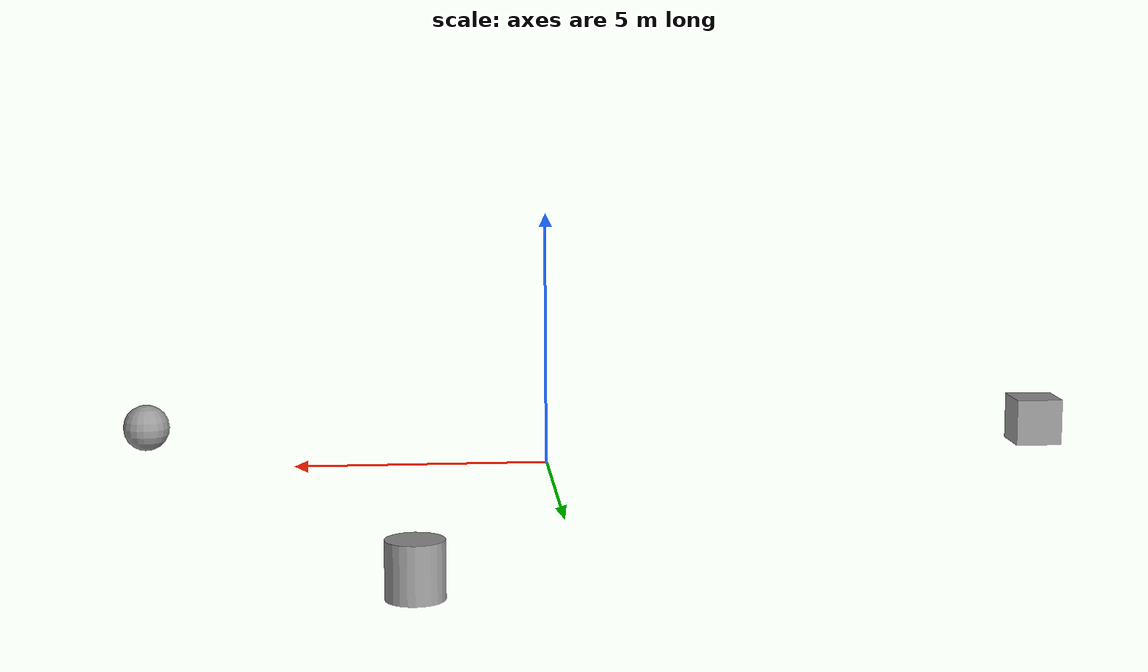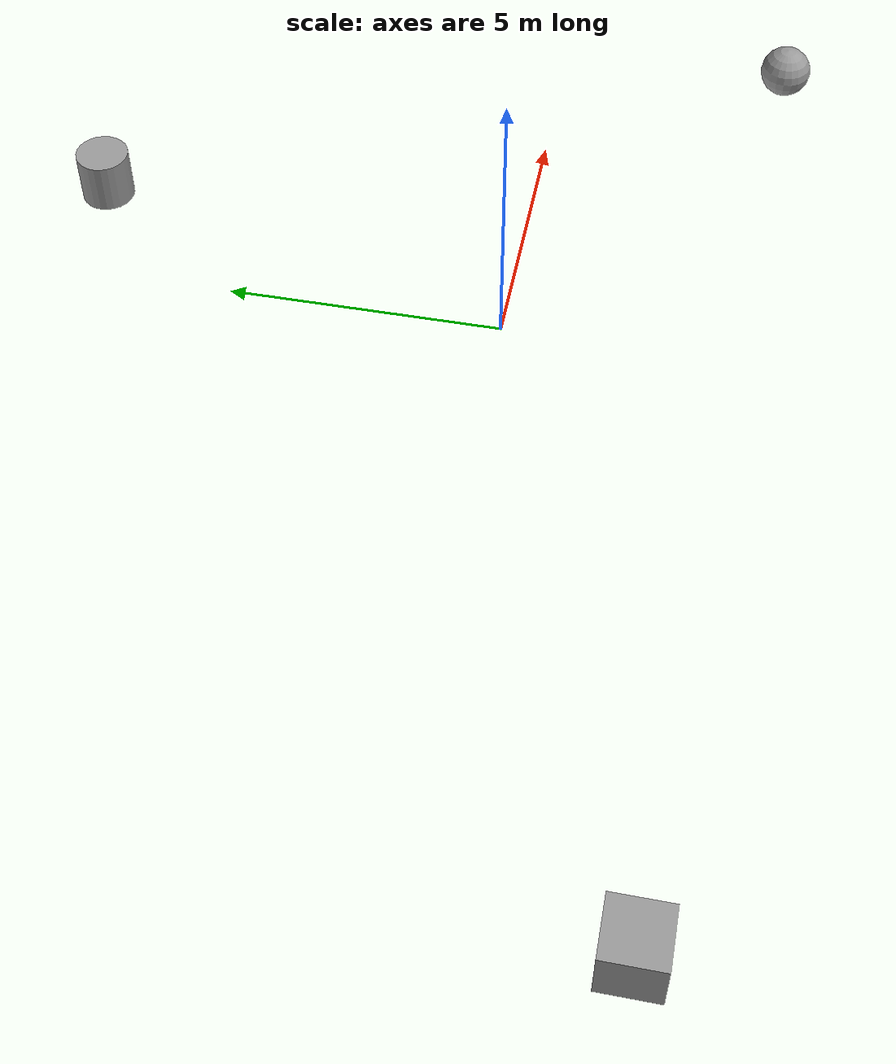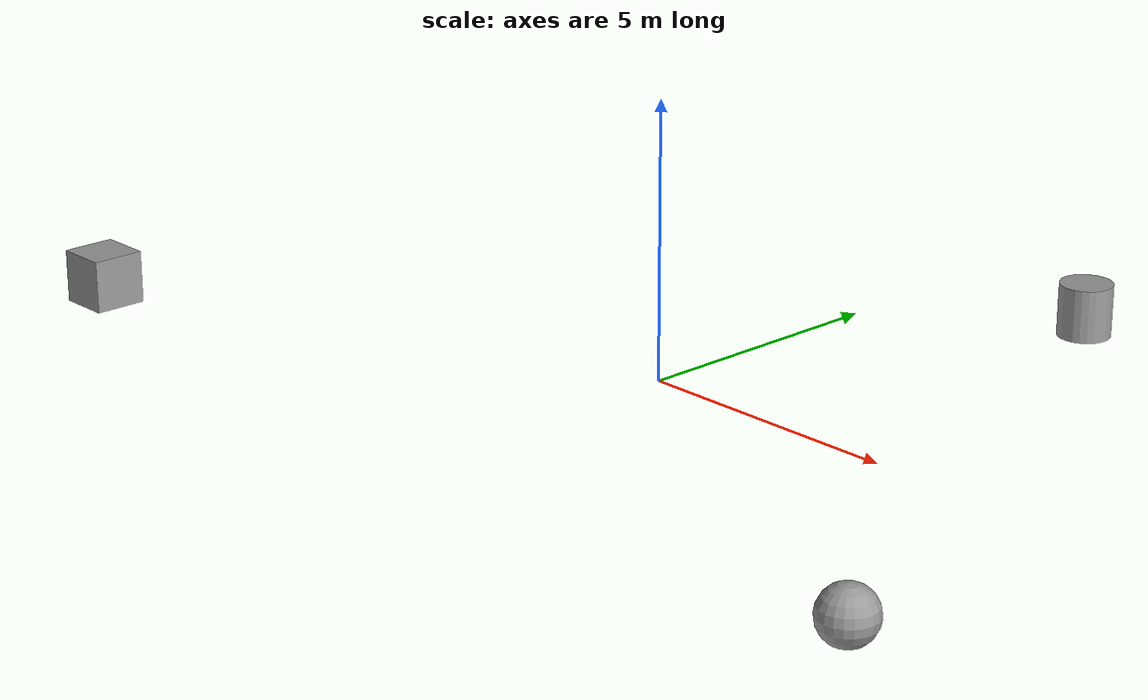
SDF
<?xml version='1.0'?>
<sdf version='1.6'>
  <model name='floorplan2'>
    <link name='link_0'>
      <inertial>
        <mass>1</mass>
        <inertia>
          <ixx>0.166667</ixx>
          <ixy>0</ixy>
          <ixz>0</ixz>
          <iyy>0.166667</iyy>
          <iyz>0</iyz>
          <izz>0.166667</izz>
        </inertia>
      </inertial>
      <pose frame=''>-11.0875 -3.83524 0 0 -0 0</pose>
      <visual name='visual'>
        <pose frame=''>0 0 0 0 -0 0</pose>
        <geometry>
          <box>
            <size>1 1 1</size>
          </box>
        </geometry>
        <material>
          <lighting>1</lighting>
          <script>
            <uri>file://media/materials/scripts/gazebo.material</uri>
            <name>Gazebo/Grey</name>
          </script>
        </material>
        <transparency>0</transparency>
        <cast_shadows>1</cast_shadows>
      </visual>
      <collision name='collision'>
        <laser_retro>0</laser_retro>
        <max_contacts>10</max_contacts>
        <pose frame=''>0 0 0 0 -0 0</pose>
        <geometry>
          <box>
            <size>1 1 1</size>
          </box>
        </geometry>
        <surface>
          <friction>
            <ode>
              <mu>1</mu>
              <mu2>1</mu2>
              <fdir1>0 0 0</fdir1>
              <slip1>0</slip1>
              <slip2>0</slip2>
            </ode>
            <torsional>
              <coefficient>1</coefficient>
              <patch_radius>0</patch_radius>
              <surface_radius>0</surface_radius>
              <use_patch_radius>1</use_patch_radius>
              <ode>
                <slip>0</slip>
              </ode>
            </torsional>
          </friction>
          <bounce>
            <restitution_coefficient>0</restitution_coefficient>
            <threshold>1e+06</threshold>
          </bounce>
          <contact>
            <collide_without_contact>0</collide_without_contact>
            <collide_without_contact_bitmask>1</collide_without_contact_bitmask>
            <collide_bitmask>1</collide_bitmask>
            <ode>
              <soft_cfm>0</soft_cfm>
              <soft_erp>0.2</soft_erp>
              <kp>1e+13</kp>
              <kd>1</kd>
              <max_vel>0.01</max_vel>
              <min_depth>0</min_depth>
            </ode>
            <bullet>
              <split_impulse>1</split_impulse>
              <split_impulse_penetration_threshold>-0.01</split_impulse_penetration_threshold>
              <soft_cfm>0</soft_cfm>
              <soft_erp>0.2</soft_erp>
              <kp>1e+13</kp>
              <kd>1</kd>
            </bullet>
          </contact>
        </surface>
      </collision>
    </link>
    <link name='link_2'>
      <inertial>
        <mass>1</mass>
        <inertia>
          <ixx>0.1</ixx>
          <ixy>0</ixy>
          <ixz>0</ixz>
          <iyy>0.1</iyy>
          <iyz>0</iyz>
          <izz>0.1</izz>
        </inertia>
      </inertial>
      <pose frame=''>8.41124 -4.44648 0 0 -0 0</pose>
      <visual name='visual'>
        <pose frame=''>0 0 0 0 -0 0</pose>
        <geometry>
          <sphere>
            <radius>0.5</radius>
          </sphere>
        </geometry>
        <material>
          <lighting>1</lighting>
          <script>
            <uri>file://media/materials/scripts/gazebo.material</uri>
            <name>Gazebo/Grey</name>
          </script>
        </material>
        <transparency>0</transparency>
        <cast_shadows>1</cast_shadows>
      </visual>
      <collision name='collision'>
        <laser_retro>0</laser_retro>
        <max_contacts>10</max_contacts>
        <pose frame=''>0 0 0 0 -0 0</pose>
        <geometry>
          <sphere>
            <radius>0.5</radius>
          </sphere>
        </geometry>
        <surface>
          <friction>
            <ode>
              <mu>1</mu>
              <mu2>1</mu2>
              <fdir1>0 0 0</fdir1>
              <slip1>0</slip1>
              <slip2>0</slip2>
            </ode>
            <torsional>
              <coefficient>1</coefficient>
              <patch_radius>0</patch_radius>
              <surface_radius>0</surface_radius>
              <use_patch_radius>1</use_patch_radius>
              <ode>
                <slip>0</slip>
              </ode>
            </torsional>
          </friction>
          <bounce>
            <restitution_coefficient>0</restitution_coefficient>
            <threshold>1e+06</threshold>
          </bounce>
          <contact>
            <collide_without_contact>0</collide_without_contact>
            <collide_without_contact_bitmask>1</collide_without_contact_bitmask>
            <collide_bitmask>1</collide_bitmask>
            <ode>
              <soft_cfm>0</soft_cfm>
              <soft_erp>0.2</soft_erp>
              <kp>1e+13</kp>
              <kd>1</kd>
              <max_vel>0.01</max_vel>
              <min_depth>0</min_depth>
            </ode>
            <bullet>
              <split_impulse>1</split_impulse>
              <split_impulse_penetration_threshold>-0.01</split_impulse_penetration_threshold>
              <soft_cfm>0</soft_cfm>
              <soft_erp>0.2</soft_erp>
              <kp>1e+13</kp>
              <kd>1</kd>
            </bullet>
          </contact>
        </surface>
      </collision>
    </link>
    <link name='link_3'>
      <inertial>
        <mass>1</mass>
        <inertia>
          <ixx>0.145833</ixx>
          <ixy>0</ixy>
          <ixz>0</ixz>
          <iyy>0.145833</iyy>
          <iyz>0</iyz>
          <izz>0.125</izz>
        </inertia>
      </inertial>
      <pose frame=''>2.67628 8.28172 0 0 -0 0</pose>
      <visual name='visual'>
        <pose frame=''>0 0 0 0 -0 0</pose>
        <geometry>
          <cylinder>
            <radius>0.5</radius>
            <length>1</length>
          </cylinder>
        </geometry>
        <material>
          <lighting>1</lighting>
          <script>
            <uri>file://media/materials/scripts/gazebo.material</uri>
            <name>Gazebo/Grey</name>
          </script>
        </material>
        <transparency>0</transparency>
        <cast_shadows>1</cast_shadows>
      </visual>
      <collision name='collision'>
        <laser_retro>0</laser_retro>
        <max_contacts>10</max_contacts>
        <pose frame=''>0 0 0 0 -0 0</pose>
        <geometry>
          <cylinder>
            <radius>0.5</radius>
            <length>1</length>
          </cylinder>
        </geometry>
        <surface>
          <friction>
            <ode>
              <mu>1</mu>
              <mu2>1</mu2>
              <fdir1>0 0 0</fdir1>
              <slip1>0</slip1>
              <slip2>0</slip2>
            </ode>
            <torsional>
              <coefficient>1</coefficient>
              <patch_radius>0</patch_radius>
              <surface_radius>0</surface_radius>
              <use_patch_radius>1</use_patch_radius>
              <ode>
                <slip>0</slip>
              </ode>
            </torsional>
          </friction>
          <bounce>
            <restitution_coefficient>0</restitution_coefficient>
            <threshold>1e+06</threshold>
          </bounce>
          <contact>
            <collide_without_contact>0</collide_without_contact>
            <collide_without_contact_bitmask>1</collide_without_contact_bitmask>
            <collide_bitmask>1</collide_bitmask>
            <ode>
              <soft_cfm>0</soft_cfm>
              <soft_erp>0.2</soft_erp>
              <kp>1e+13</kp>
              <kd>1</kd>
              <max_vel>0.01</max_vel>
              <min_depth>0</min_depth>
            </ode>
            <bullet>
              <split_impulse>1</split_impulse>
              <split_impulse_penetration_threshold>-0.01</split_impulse_penetration_threshold>
              <soft_cfm>0</soft_cfm>
              <soft_erp>0.2</soft_erp>
              <kp>1e+13</kp>
              <kd>1</kd>
            </bullet>
          </contact>
        </surface>
      </collision>
    </link>
    <static>0</static>
    <allow_auto_disable>1</allow_auto_disable>
  </model>
</sdf>
